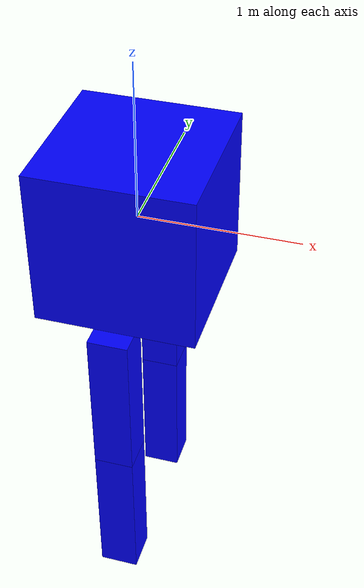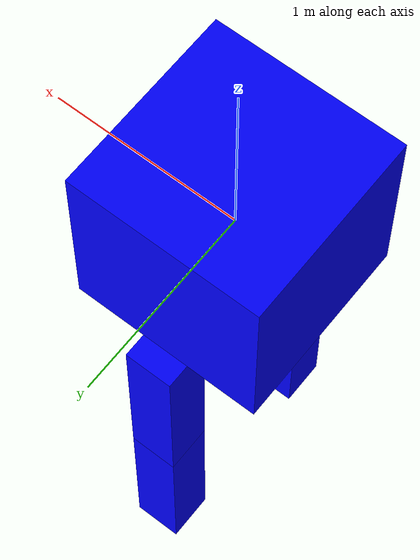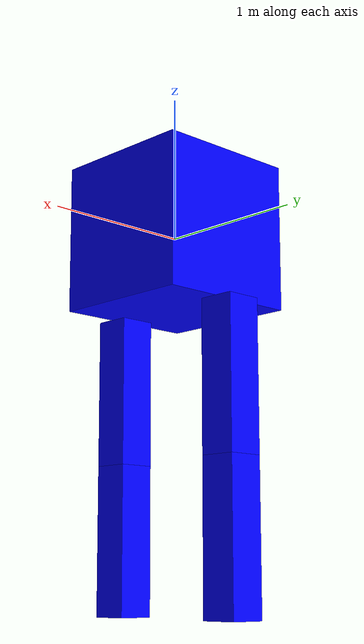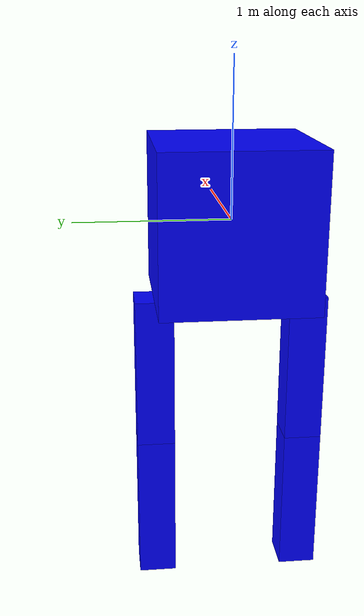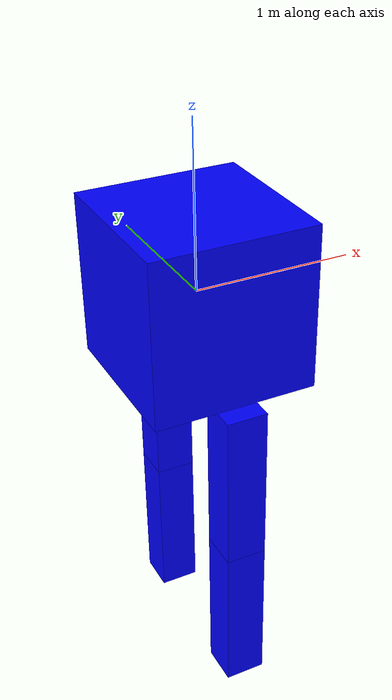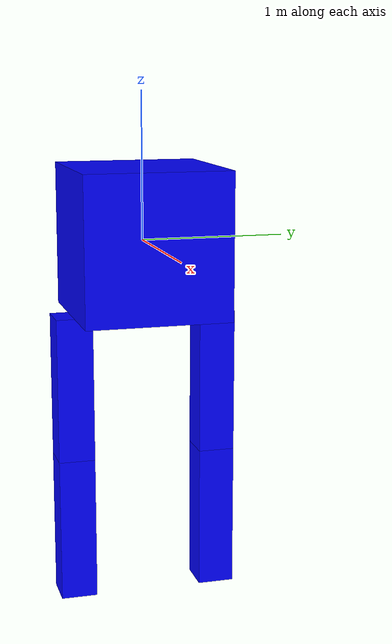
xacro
<?xml version="1.0"?>
<robot name="bipedal_robot" xmlns:xacro="http://www.ros.org/wiki/xacro">
    <xacro:include filename="$(find bipedal_robot)/urdf/core_bipedal_robot.urdf.xacro"/>

    <link name="world"></link>

    <joint name="base_joint" type="fixed">
		<origin xyz="0 0 0" rpy="0 0 0"/>
		<parent link="world"/>
		<child link="base_link"/>
	</joint>
</robot>

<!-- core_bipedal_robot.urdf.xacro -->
<robot name="bipedal_robot" xmlns:xacro="http://www.ros.org/wiki/xacro">
	<link name="base_link">
		<visual>
			<origin xyz="0 0 0" rpy="0 0 0"/>
			<geometry>
				<box size="1 1 1" />
			</geometry>
			<material name="blue">
				<color rgba="0 0 1 1"/>
			</material>
		</visual>
		<collision>
		    <origin xyz="0 0 0" rpy="0 0 0"/>
			<geometry>
				<box size="1 1 1" />
			</geometry>
		</collision>
		<inertial>
            <mass value="1.0"/>
		    <origin xyz="0 0 0"/>
		    <inertia ixx="0.1" ixy="0.0" ixz="0.0" iyy="0.1" iyz="0.0" izz="0.1"/>
		</inertial>
	</link>

	<xacro:macro name="leg" params="name shift">
        <link name="${name}_thigh">
            <visual>
                <origin xyz="0 0 -0.5" rpy="0 0 0"/>
                <geometry>
                    <box size="0.25 0.25 1" />
                </geometry>
                <material name="blue">
                    <color rgba="0 0 1 1"/>
                </material>
            </visual>
            <collision>
                <origin xyz="0 0 -0.5" rpy="0 0 0"/>
                <geometry>
                    <box size="0.25 0.25 1" />
                </geometry>
            </collision>
            <inertial>
                <mass value="1.0"/>
                <origin xyz="0 0 0"/>
                <inertia ixx="0.1" ixy="0.0" ixz="0.0" iyy="0.1" iyz="0.0" izz="0.1"/>
            </inertial>
        </link>

        <link name="${name}_shin">
            <visual>
                <origin xyz="0 0 -0.5" rpy="0 0 0"/>
                <geometry>
                    <box size="0.25 0.25 1" />
                </geometry>
                <material name="blue">
                    <color rgba="0 0 1 1"/>
                </material>
            </visual>
            <collision>
                <origin xyz="0 0 -0.5" rpy="0 0 0"/>
                <geometry>
                    <box size="0.25 0.25 1" />
                </geometry>
            </collision>
            <inertial>
                <mass value="1.0"/>
                <origin xyz="0 0 0"/>
                <inertia ixx="0.1" ixy="0.0" ixz="0.0" iyy="0.1" iyz="0.0" izz="0.1"/>
            </inertial>
        </link>

        <joint name="${name}_hip_joint" type="continuous">
            <parent link="base_link"/>
            <child link="${name}_thigh"/>
            <origin xyz="0 ${shift} -0.5" rpy="0 0 0"/>
            <axis xyz="0 1 0"/>
        </joint>

        <joint name="${name}_knee_joint" type="continuous">
            <parent link="${name}_thigh"/>
            <child link="${name}_shin"/>
            <origin xyz="0 0 -1" rpy="0 0 0"/>
            <axis xyz="0 1 0"/>
        </joint>
	</xacro:macro>

	<xacro:leg name="left" shift="0.5"/>
	<xacro:leg name="right" shift="-0.5"/>
</robot>
